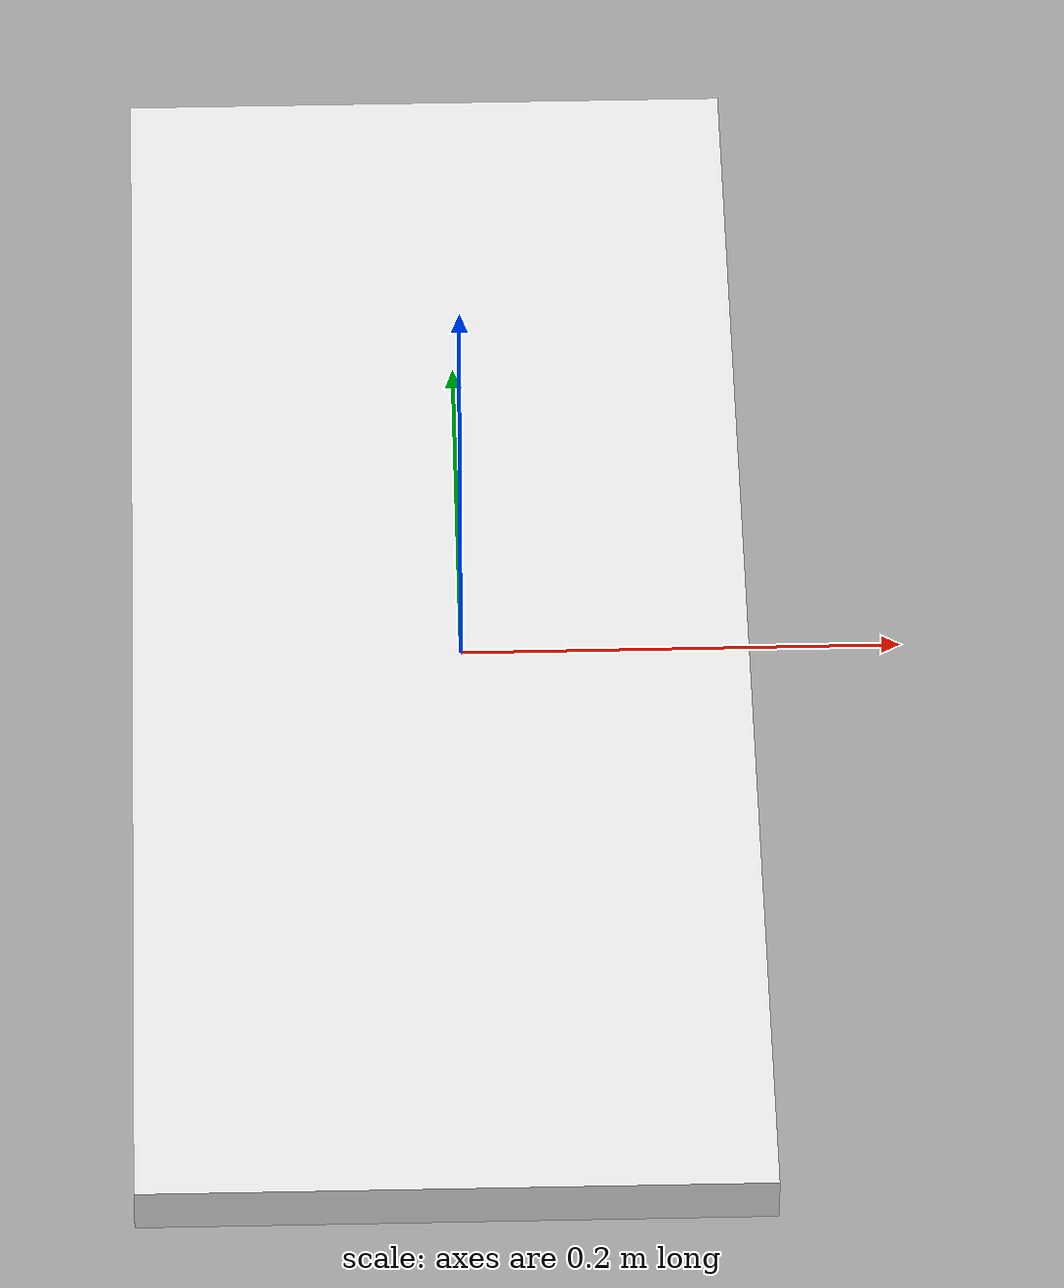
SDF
<?xml version="1.0"?>
<sdf version="1.6">
  <model name="rgo2015/cupboard/shelf">
    <link name="1_link">
      <collision name="1_col">
        <geometry>
          <box>
            <size>0.28 0.75 0.02</size>
          </box>
        </geometry>
      </collision>
      <visual name="1_vis">
        <geometry>
          <box>
            <size>0.28 0.75 0.02</size>
          </box>
        </geometry>
        <material>
          <ambient>0.9 0.9 0.9 1</ambient>
        </material>
      </visual>
      <pose>-0.01 0.0 0.01 0 0 0</pose>
    </link>
    <static>true</static>
  </model>
</sdf>
